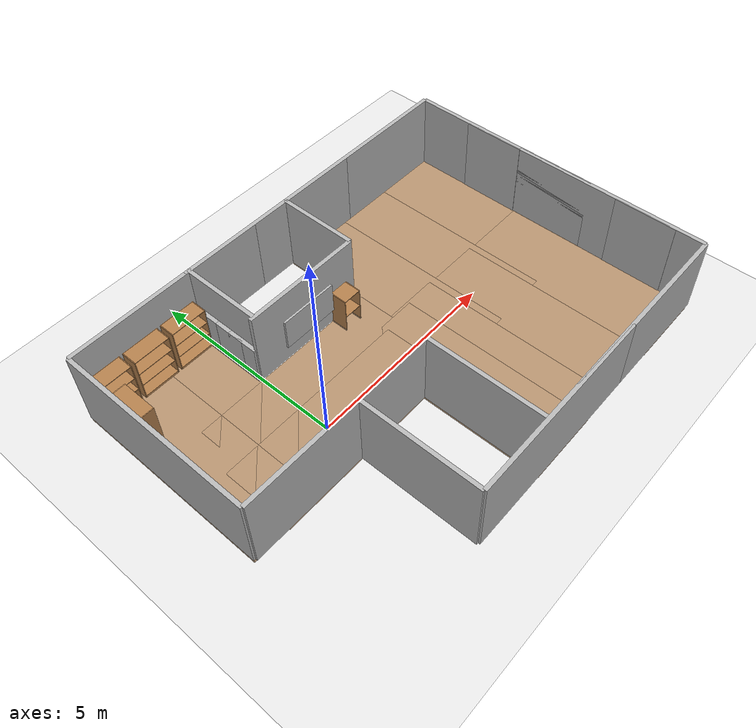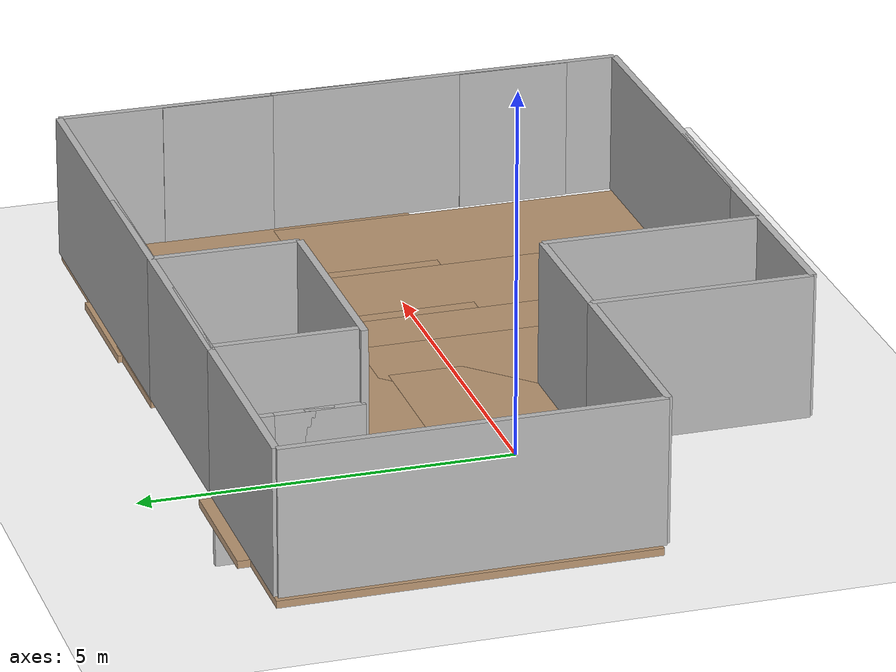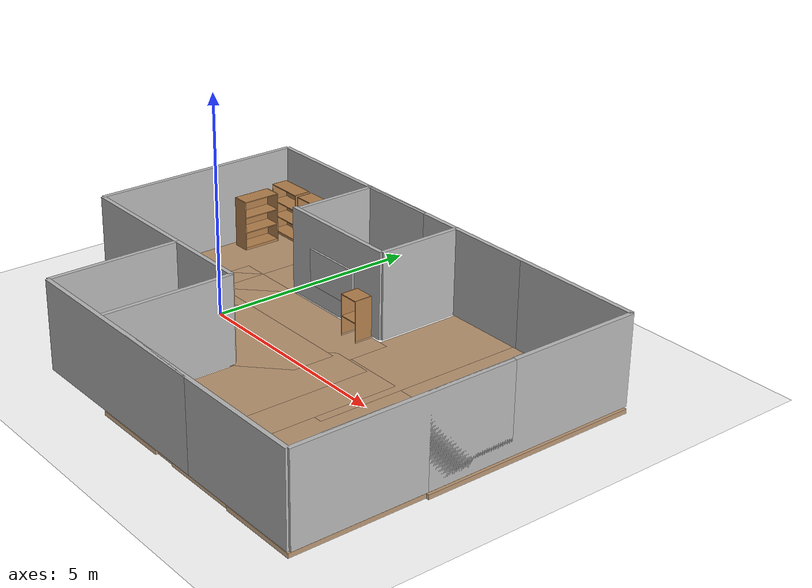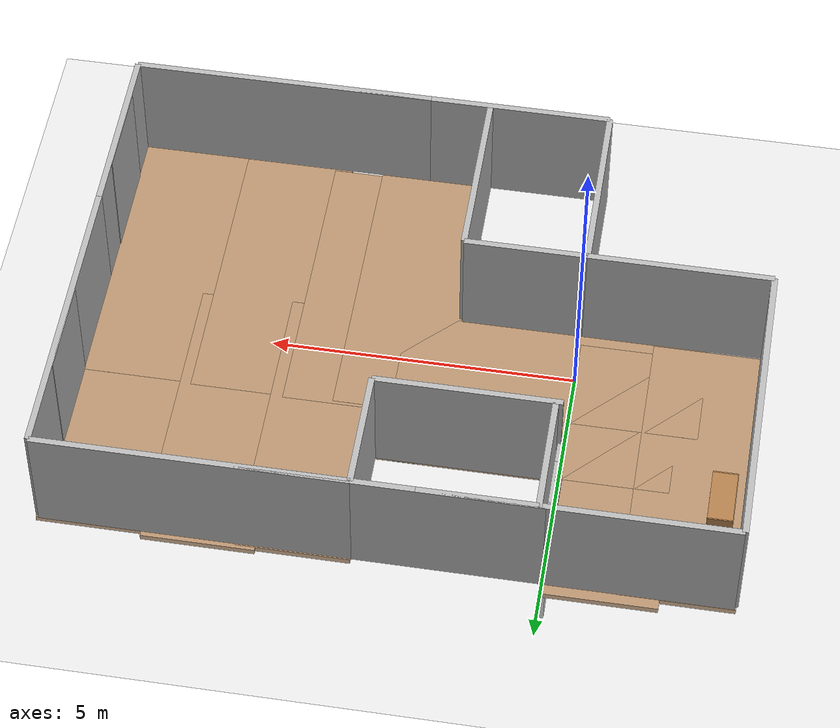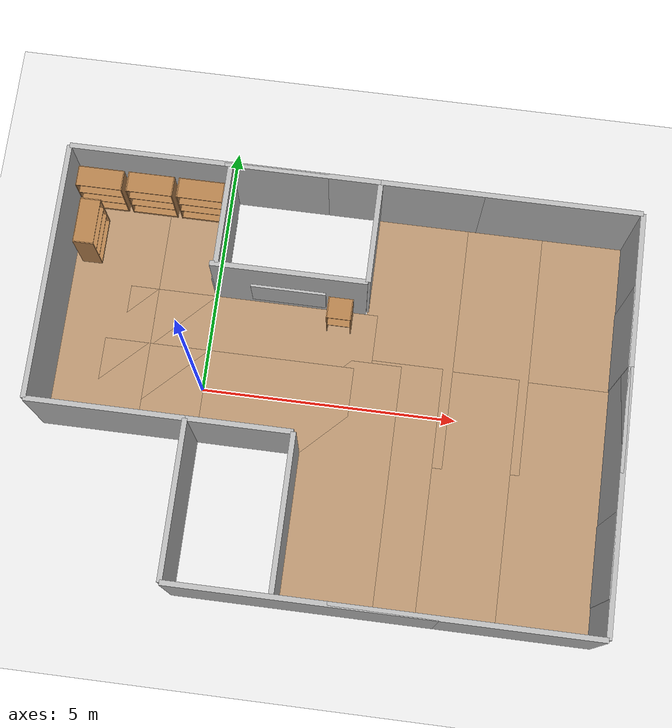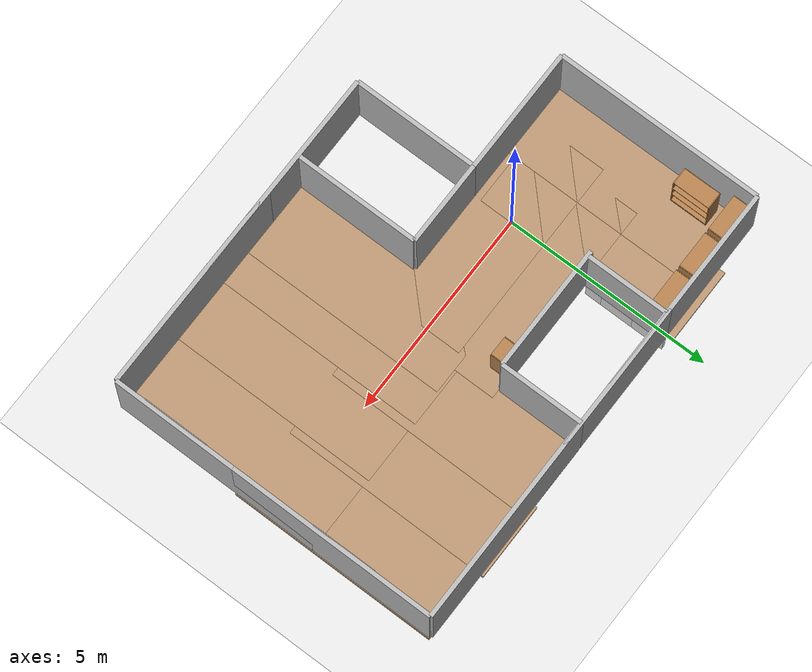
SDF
<sdf version="1.7">
 <world name="default">
  <light name="sun" type="directional">
   <pose>0 0 10 0 -0 0</pose>
   <diffuse>0.8 0.8 0.8 1</diffuse>
   <specular>0.2 0.2 0.2 1</specular>
   <attenuation>
    <range>1000</range>
    <constant>0.9</constant>
    <linear>0.01</linear>
    <quadratic>0.001</quadratic>
   </attenuation>
   <direction>-0.5 0.1 -0.9</direction>
   <spot><inner_angle>0</inner_angle><outer_angle>0</outer_angle><falloff>0</falloff></spot>
  </light>
  <model name="ground_plane">
   <static>1</static>
   <link name="link">
    <collision name="collision">
     <geometry><plane><normal>0 0 1</normal><size>100 100</size></plane></geometry>
     <surface>
      <contact><collide_bitmask>65535</collide_bitmask></contact>
      <friction><ode><mu>100</mu><mu2>50</mu2></ode></friction>
     </surface>
    </collision>
    <visual name="visual">
     <cast_shadows>0</cast_shadows>
     <geometry><plane><normal>0 0 1</normal><size>1 1</size></plane></geometry>
     <material>
      <script><uri>file://media/materials/scripts/gazebo.material</uri><name>Gazebo/Grey</name></script>
     </material>
    </visual>
   </link>
  </model>
  <gravity>0 0 -9.8</gravity>
  <magnetic_field>6e-06 2.3e-05 -4.2e-05</magnetic_field>
  <atmosphere type="adiabatic"/>
  <physics type="ode">
   <max_step_size>0.001</max_step_size>
   <real_time_factor>1</real_time_factor>
   <real_time_update_rate>1000</real_time_update_rate>
  </physics>
  <scene><ambient>0.4 0.4 0.4 1</ambient><background>0.7 0.7 0.7 1</background><shadows>1</shadows></scene>
  <audio><device>default</device></audio>
  <spherical_coordinates>
   <surface_model>EARTH_WGS84</surface_model>
   <latitude_deg>0</latitude_deg>
   <longitude_deg>0</longitude_deg>
   <elevation>0</elevation>
   <heading_deg>0</heading_deg>
  </spherical_coordinates>
  <model name="Bookshelf">
   <static>1</static>
   <link name="link">
    <inertial><mass>1</mass></inertial>
    <collision name="back">
     <pose>0 0.005 0.6 0 -0 0</pose>
     <geometry><box><size>0.9 0.01 1.2</size></box></geometry>
    </collision>
    <visual name="visual1">
     <pose>0 0.005 0.6 0 -0 0</pose>
     <geometry><box><size>0.9 0.01 1.2</size></box></geometry>
     <material>
      <diffuse>1 1 1 1</diffuse>
      <script><uri>file://media/materials/scripts/gazebo.material</uri><name>Gazebo/Wood</name></script>
      <pbr>
       <metal>
        <albedo_map>https://fuel.ignitionrobotics.org/1.0/openrobotics/models/bookshelf/3/files/bookshelf_diffuse.jpg</albedo_map>
       </metal>
      </pbr>
     </material>
    </visual>
    <collision name="left_side">
     <pose>0.45 -0.195 0.6 0 -0 0</pose>
     <geometry><box><size>0.02 0.4 1.2</size></box></geometry>
    </collision>
    <visual name="visual2">
     <pose>0.45 -0.195 0.6 0 -0 0</pose>
     <geometry><box><size>0.02 0.4 1.2</size></box></geometry>
     <material>
      <diffuse>1 1 1 1</diffuse>
      <script><uri>file://media/materials/scripts/gazebo.material</uri><name>Gazebo/Wood</name></script>
      <pbr>
       <metal>
        <albedo_map>https://fuel.ignitionrobotics.org/1.0/openrobotics/models/bookshelf/3/files/bookshelf_diffuse.jpg</albedo_map>
       </metal>
      </pbr>
     </material>
    </visual>
    <collision name="right_side">
     <pose>-0.45 -0.195 0.6 0 -0 0</pose>
     <geometry><box><size>0.02 0.4 1.2</size></box></geometry>
    </collision>
    <visual name="visual3">
     <pose>-0.45 -0.195 0.6 0 -0 0</pose>
     <geometry><box><size>0.02 0.4 1.2</size></box></geometry>
     <material>
      <diffuse>1 1 1 1</diffuse>
      <script><uri>file://media/materials/scripts/gazebo.material</uri><name>Gazebo/Wood</name></script>
      <pbr>
       <metal>
        <albedo_map>https://fuel.ignitionrobotics.org/1.0/openrobotics/models/bookshelf/3/files/bookshelf_diffuse.jpg</albedo_map>
       </metal>
      </pbr>
     </material>
    </visual>
    <collision name="bottom">
     <pose>0 -0.195 0.03 0 -0 0</pose>
     <geometry><box><size>0.88 0.4 0.06</size></box></geometry>
    </collision>
    <visual name="visual4">
     <pose>0 -0.195 0.03 0 -0 0</pose>
     <geometry><box><size>0.88 0.4 0.06</size></box></geometry>
     <material>
      <diffuse>1 1 1 1</diffuse>
      <script><uri>file://media/materials/scripts/gazebo.material</uri><name>Gazebo/Wood</name></script>
      <pbr>
       <metal>
        <albedo_map>https://fuel.ignitionrobotics.org/1.0/openrobotics/models/bookshelf/3/files/bookshelf_diffuse.jpg</albedo_map>
       </metal>
      </pbr>
     </material>
    </visual>
    <collision name="top">
     <pose>0 -0.195 1.19 0 -0 0</pose>
     <geometry><box><size>0.88 0.4 0.02</size></box></geometry>
    </collision>
    <visual name="visual5">
     <pose>0 -0.195 1.19 0 -0 0</pose>
     <geometry><box><size>0.88 0.4 0.02</size></box></geometry>
     <material>
      <diffuse>1 1 1 1</diffuse>
      <script><uri>file://media/materials/scripts/gazebo.material</uri><name>Gazebo/Wood</name></script>
      <pbr>
       <metal>
        <albedo_map>https://fuel.ignitionrobotics.org/1.0/openrobotics/models/bookshelf/3/files/bookshelf_diffuse.jpg</albedo_map>
       </metal>
      </pbr>
     </material>
    </visual>
    <collision name="low_shelf">
     <pose>0 -0.195 0.43 0 -0 0</pose>
     <geometry><box><size>0.88 0.4 0.02</size></box></geometry>
    </collision>
    <visual name="visual6">
     <pose>0 -0.195 0.43 0 -0 0</pose>
     <geometry><box><size>0.88 0.4 0.02</size></box></geometry>
     <material>
      <diffuse>1 1 1 1</diffuse>
      <script><uri>file://media/materials/scripts/gazebo.material</uri><name>Gazebo/Wood</name></script>
      <pbr>
       <metal>
        <albedo_map>https://fuel.ignitionrobotics.org/1.0/openrobotics/models/bookshelf/3/files/bookshelf_diffuse.jpg</albedo_map>
       </metal>
      </pbr>
     </material>
    </visual>
    <collision name="high_shelf">
     <pose>0 -0.195 0.8 0 -0 0</pose>
     <geometry><box><size>0.88 0.4 0.02</size></box></geometry>
    </collision>
    <visual name="visual7">
     <pose>0 -0.195 0.8 0 -0 0</pose>
     <geometry><box><size>0.88 0.4 0.02</size></box></geometry>
     <material>
      <diffuse>1 1 1 1</diffuse>
      <script><uri>file://media/materials/scripts/gazebo.material</uri><name>Gazebo/Wood</name></script>
      <pbr>
       <metal>
        <albedo_map>https://fuel.ignitionrobotics.org/1.0/openrobotics/models/bookshelf/3/files/bookshelf_diffuse.jpg</albedo_map>
       </metal>
      </pbr>
     </material>
    </visual>
   </link>
   <pose>-0.5 3.9 0 0 -0 0</pose>
  </model>
  <model name="cabinet">
   <static>1</static>
   <link name="cabinet_bottom_plate">
    <inertial>
     <pose>0 0 -1 0 -0 0</pose>
     <inertia><ixx>2.05</ixx><ixy>0</ixy><ixz>0</ixz><iyy>2.05</iyy><iyz>0</iyz><izz>2.05</izz></inertia>
     <mass>25</mass>
    </inertial>
    <collision name="cabinet_bottom_plate_geom">
     <pose>0 0 0.01 0 -0 0</pose>
     <geometry><box><size>0.45 0.45 0.02</size></box></geometry>
    </collision>
    <visual name="cabinet_bottom_plate_geom_visual">
     <pose>0 0 0.01 0 -0 0</pose>
     <geometry><box><size>0.45 0.45 0.02</size></box></geometry>
     <material>
      <script><uri>file://media/materials/scripts/gazebo.material</uri><name>Gazebo/Wood</name></script>
     </material>
    </visual>
    <collision name="cabinet_bottom_plate_geom_cabinet_back_plate">
     <pose>0.235 0 0.51 0 -0 0</pose>
     <geometry><box><size>0.02 0.45 1.02</size></box></geometry>
    </collision>
    <visual name="cabinet_bottom_plate_geom_cabinet_back_plate_visual">
     <pose>0.235 0 0.51 0 -0 0</pose>
     <geometry><box><size>0.02 0.45 1.02</size></box></geometry>
     <material>
      <script><uri>file://media/materials/scripts/gazebo.material</uri><name>Gazebo/Wood</name></script>
     </material>
    </visual>
    <collision name="cabinet_bottom_plate_geom_cabinet_left_plate">
     <pose>0 0.235 0.51 0 -0 0</pose>
     <geometry><box><size>0.45 0.02 1.02</size></box></geometry>
    </collision>
    <visual name="cabinet_bottom_plate_geom_cabinet_left_plate_visual">
     <pose>0 0.235 0.51 0 -0 0</pose>
     <geometry><box><size>0.45 0.02 1.02</size></box></geometry>
     <material>
      <script><uri>file://media/materials/scripts/gazebo.material</uri><name>Gazebo/Wood</name></script>
     </material>
    </visual>
    <collision name="cabinet_bottom_plate_geom_cabinet_middle_plate">
     <pose>0 0 0.51 0 -0 0</pose>
     <geometry><box><size>0.45 0.45 0.02</size></box></geometry>
    </collision>
    <visual name="cabinet_bottom_plate_geom_cabinet_middle_plate_visual">
     <pose>0 0 0.51 0 -0 0</pose>
     <geometry><box><size>0.45 0.45 0.02</size></box></geometry>
     <material>
      <script><uri>file://media/materials/scripts/gazebo.material</uri><name>Gazebo/Wood</name></script>
     </material>
    </visual>
    <collision name="cabinet_bottom_plate_geom_cabinet_right_plate">
     <pose>0 -0.235 0.51 0 -0 0</pose>
     <geometry><box><size>0.45 0.02 1.02</size></box></geometry>
    </collision>
    <visual name="cabinet_bottom_plate_geom_cabinet_right_plate_visual">
     <pose>0 -0.235 0.51 0 -0 0</pose>
     <geometry><box><size>0.45 0.02 1.02</size></box></geometry>
     <material>
      <script><uri>file://media/materials/scripts/gazebo.material</uri><name>Gazebo/Wood</name></script>
     </material>
    </visual>
    <collision name="cabinet_bottom_plate_geom_cabinet_top_plate">
     <pose>0 0 1.01 0 -0 0</pose>
     <geometry><box><size>0.45 0.45 0.02</size></box></geometry>
    </collision>
    <visual name="cabinet_bottom_plate_geom_cabinet_top_plate_visual">
     <pose>0 0 1.01 0 -0 0</pose>
     <geometry><box><size>0.45 0.45 0.02</size></box></geometry>
     <material>
      <script><uri>file://media/materials/scripts/gazebo.material</uri><name>Gazebo/Wood</name></script>
     </material>
    </visual>
   </link>
   <pose>2.5 1.75 -0.1 0 -0 1.5707</pose>
  </model>
  <model name="door_08x2m_0">
   <link name="link">
    <visual name="visual">
     <geometry><box><size>0.1 0.8 2</size></box></geometry>
     <material>
      <script>
       <uri>https://fuel.ignitionrobotics.org/1.0/makerspet/models/door_08x2m/1/files/material/script</uri>
       <uri>https://fuel.ignitionrobotics.org/1.0/makerspet/models/door_08x2m/1/files/material/textures</uri>
       <name>Custom/door_08x2m</name>
      </script>
     </material>
    </visual>
   </link>
   <static>1</static>
   <pose>0 2.8 0 0 -0 0</pose>
  </model>
  <model name="living_room"><static>0</static><pose>-1.83596 1.40391 0 0 -0 0</pose></model>
  <model name="room_wall_2x5">
   <link name="link">
    <visual name="visual">
     <geometry><box><size>0.1 5 2</size></box></geometry>
     <material>
      <script>
       <uri>https://fuel.ignitionrobotics.org/1.0/makerspet/models/room_wall_2x5m/1/files/material/script</uri>
       <uri>https://fuel.ignitionrobotics.org/1.0/makerspet/models/room_wall_2x5m/1/files/material/textures</uri>
       <name>Custom/room_wall_2x5</name>
      </script>
     </material>
    </visual>
    <collision name="collision"><geometry><box><size>0.1 5 2</size></box></geometry></collision>
   </link>
   <static>1</static>
   <pose>8 -1.5 1 0 -0 0</pose>
  </model>
  <model name="room_wall_2x5_0">
   <link name="link">
    <visual name="visual">
     <geometry><box><size>0.1 5 2</size></box></geometry>
     <material>
      <script>
       <uri>https://fuel.ignitionrobotics.org/1.0/makerspet/models/room_wall_2x5m/1/files/material/script</uri>
       <uri>https://fuel.ignitionrobotics.org/1.0/makerspet/models/room_wall_2x5m/1/files/material/textures</uri>
       <name>Custom/room_wall_2x5</name>
      </script>
     </material>
    </visual>
    <collision name="collision"><geometry><box><size>0.1 5 2</size></box></geometry></collision>
   </link>
   <static>1</static>
   <pose>8 1.5 1 0 -0 0</pose>
  </model>
  <model name="room_wall_2x5_1">
   <link name="link">
    <visual name="visual">
     <geometry><box><size>0.1 5 2</size></box></geometry>
     <material>
      <script>
       <uri>https://fuel.ignitionrobotics.org/1.0/makerspet/models/room_wall_2x5m/1/files/material/script</uri>
       <uri>https://fuel.ignitionrobotics.org/1.0/makerspet/models/room_wall_2x5m/1/files/material/textures</uri>
       <name>Custom/room_wall_2x5</name>
      </script>
     </material>
    </visual>
    <collision name="collision"><geometry><box><size>0.1 5 2</size></box></geometry></collision>
   </link>
   <static>1</static>
   <pose>5.5 -4 1 0 -0 1.5707</pose>
  </model>
  <model name="room_wall_2x5_2">
   <link name="link">
    <visual name="visual">
     <geometry><box><size>0.1 5 2</size></box></geometry>
     <material>
      <script>
       <uri>https://fuel.ignitionrobotics.org/1.0/makerspet/models/room_wall_2x5m/1/files/material/script</uri>
       <uri>https://fuel.ignitionrobotics.org/1.0/makerspet/models/room_wall_2x5m/1/files/material/textures</uri>
       <name>Custom/room_wall_2x5</name>
      </script>
     </material>
    </visual>
    <collision name="collision"><geometry><box><size>0.1 5 2</size></box></geometry></collision>
   </link>
   <static>1</static>
   <pose>2.5 -4 1 0 -0 1.5707</pose>
  </model>
  <model name="window_curtains">
   <link name="link">
    <visual name="visual">
     <geometry><box><size>0.02 1.5676 2</size></box></geometry>
     <material>
      <script>
       <uri>https://fuel.ignitionrobotics.org/1.0/makerspet/models/window_curtains/1/files/material/script</uri>
       <uri>https://fuel.ignitionrobotics.org/1.0/makerspet/models/window_curtains/1/files/material/textures</uri>
       <name>Custom/window_curtains</name>
      </script>
      <emissive>0 1 0 1</emissive>
     </material>
    </visual>
   </link>
   <static>1</static>
   <pose>7.95 1.76719 1 0 -0 0</pose>
  </model>
  <model name="window_curtains_0">
   <link name="link">
    <visual name="visual">
     <geometry><box><size>0.02 1.5676 2</size></box></geometry>
     <material>
      <script>
       <uri>https://fuel.ignitionrobotics.org/1.0/makerspet/models/window_curtains/1/files/material/script</uri>
       <uri>https://fuel.ignitionrobotics.org/1.0/makerspet/models/window_curtains/1/files/material/textures</uri>
       <name>Custom/window_curtains</name>
      </script>
      <emissive>0 1 0 1</emissive>
     </material>
    </visual>
   </link>
   <static>1</static>
   <pose>7.95 -2.5 1 0 -0 0</pose>
  </model>
  <model name="tv_65in_emissive">
   <link name="link">
    <visual name="visual">
     <geometry><box><size>0.05 1.45 0.83</size></box></geometry>
     <material>
      <script>
       <uri>https://fuel.ignitionrobotics.org/1.0/makerspet/models/tv_65in_emissive/4/files/material/script</uri>
       <uri>https://fuel.ignitionrobotics.org/1.0/makerspet/models/tv_65in_emissive/4/files/material/textures</uri>
       <name>Custom/tv_emissive</name>
      </script>
     </material>
    </visual>
   </link>
   <static>1</static>
   <pose>1.48594 1.87052 0.9 0 -0 1.5707</pose>
  </model>
  <model name="room_wall_2x5_2_clone">
   <link name="link">
    <visual name="visual">
     <geometry><box><size>0.1 5 2</size></box></geometry>
     <material>
      <script>
       <uri>https://fuel.ignitionrobotics.org/1.0/makerspet/models/room_wall_2x5m/1/files/material/script</uri>
       <uri>https://fuel.ignitionrobotics.org/1.0/makerspet/models/room_wall_2x5m/1/files/material/textures</uri>
       <name>Custom/room_wall_2x5</name>
      </script>
     </material>
    </visual>
    <collision name="collision"><geometry><box><size>0.1 5 2</size></box></geometry></collision>
   </link>
   <static>1</static>
   <pose>5.5 4 1 0 -0 1.5707</pose>
  </model>
  <model name="room_wall_2x5_2_clone_clone">
   <link name="link">
    <visual name="visual">
     <geometry><box><size>0.1 5 2</size></box></geometry>
     <material>
      <script>
       <uri>https://fuel.ignitionrobotics.org/1.0/makerspet/models/room_wall_2x5m/1/files/material/script</uri>
       <uri>https://fuel.ignitionrobotics.org/1.0/makerspet/models/room_wall_2x5m/1/files/material/textures</uri>
       <name>Custom/room_wall_2x5</name>
      </script>
     </material>
    </visual>
    <collision name="collision"><geometry><box><size>0.1 5 2</size></box></geometry></collision>
   </link>
   <static>1</static>
   <pose>2.5 4 1 0 -0 1.5707</pose>
  </model>
  <model name="door_08x2m">
   <link name="link">
    <visual name="visual">
     <geometry><box><size>0.1 0.8 2</size></box></geometry>
     <material>
      <script>
       <uri>https://fuel.gazebosim.org/1.0/makerspet/models/door_08x2m/1/files/material/script</uri>
       <uri>https://fuel.gazebosim.org/1.0/makerspet/models/door_08x2m/1/files/material/textures</uri>
       <name>Custom/door_08x2m</name>
      </script>
     </material>
    </visual>
   </link>
   <static>1</static>
   <pose>0 2.4 0 0 -0 0</pose>
  </model>
  <model name="room_wall_2x2">
   <link name="link">
    <visual name="visual">
     <geometry><box><size>0.1 2 2</size></box></geometry>
     <material>
      <script>
       <uri>https://fuel.ignitionrobotics.org/1.0/makerspet/models/room_wall_2x5m/1/files/material/script</uri>
       <uri>https://fuel.ignitionrobotics.org/1.0/makerspet/models/room_wall_2x5m/1/files/material/textures</uri>
       <name>Custom/room_wall_2x5</name>
      </script>
     </material>
    </visual>
    <collision name="collision"><geometry><box><size>0.1 2 2</size></box></geometry></collision>
   </link>
   <static>1</static>
   <pose>3 3 1 0 -0 0</pose>
  </model>
  <model name="room_wall_2x5_2_clone_clone_clone">
   <link name="link">
    <visual name="visual">
     <geometry><box><size>0.1 5 2</size></box></geometry>
     <material>
      <script>
       <uri>https://fuel.ignitionrobotics.org/1.0/makerspet/models/room_wall_2x5m/1/files/material/script</uri>
       <uri>https://fuel.ignitionrobotics.org/1.0/makerspet/models/room_wall_2x5m/1/files/material/textures</uri>
       <name>Custom/room_wall_2x5</name>
      </script>
     </material>
    </visual>
    <collision name="collision"><geometry><box><size>0.1 5 2</size></box></geometry></collision>
   </link>
   <static>1</static>
   <pose>-0.5 4 1 0 -0 1.5707</pose>
  </model>
  <model name="room_wall_2x5_2_clone_clone_clone_0">
   <link name="link">
    <visual name="visual">
     <geometry><box><size>0.1 5 2</size></box></geometry>
     <material>
      <script>
       <uri>https://fuel.ignitionrobotics.org/1.0/makerspet/models/room_wall_2x5m/1/files/material/script</uri>
       <uri>https://fuel.ignitionrobotics.org/1.0/makerspet/models/room_wall_2x5m/1/files/material/textures</uri>
       <name>Custom/room_wall_2x5</name>
      </script>
     </material>
    </visual>
    <collision name="collision"><geometry><box><size>0.1 5 2</size></box></geometry></collision>
   </link>
   <static>1</static>
   <pose>-3 1.5 1 0 -0 0</pose>
  </model>
  <model name="room_wall_2x2_clone">
   <link name="link">
    <visual name="visual">
     <geometry><box><size>0.1 3 2</size></box></geometry>
     <material>
      <script>
       <uri>https://fuel.ignitionrobotics.org/1.0/makerspet/models/room_wall_2x5m/1/files/material/script</uri>
       <uri>https://fuel.ignitionrobotics.org/1.0/makerspet/models/room_wall_2x5m/1/files/material/textures</uri>
       <name>Custom/room_wall_2x5</name>
      </script>
     </material>
    </visual>
    <collision name="collision"><geometry><box><size>0.1 3 2</size></box></geometry></collision>
   </link>
   <static>1</static>
   <pose>0 -2.5 1 0 -0 0</pose>
  </model>
  <model name="room_wall_2x2_clone_clone">
   <link name="link">
    <visual name="visual">
     <geometry><box><size>0.1 3 2</size></box></geometry>
     <material>
      <script>
       <uri>https://fuel.ignitionrobotics.org/1.0/makerspet/models/room_wall_2x5m/1/files/material/script</uri>
       <uri>https://fuel.ignitionrobotics.org/1.0/makerspet/models/room_wall_2x5m/1/files/material/textures</uri>
       <name>Custom/room_wall_2x5</name>
      </script>
     </material>
    </visual>
    <collision name="collision"><geometry><box><size>0.1 3 2</size></box></geometry></collision>
   </link>
   <static>1</static>
   <pose>1.5 2 1 0 -0 1.5707</pose>
  </model>
  <model name="room_wall_2x2_clone_clone_clone">
   <link name="link">
    <visual name="visual">
     <geometry><box><size>0.1 3 2</size></box></geometry>
     <material>
      <script>
       <uri>https://fuel.ignitionrobotics.org/1.0/makerspet/models/room_wall_2x5m/1/files/material/script</uri>
       <uri>https://fuel.ignitionrobotics.org/1.0/makerspet/models/room_wall_2x5m/1/files/material/textures</uri>
       <name>Custom/room_wall_2x5</name>
      </script>
     </material>
    </visual>
    <collision name="collision"><geometry><box><size>0.1 3 2</size></box></geometry></collision>
   </link>
   <static>1</static>
   <pose>-1.5 -1 1 0 -0 1.5707</pose>
  </model>
  <model name="door_08x2m_0_clone">
   <link name="link">
    <visual name="visual">
     <geometry><box><size>0.1 0.8 2</size></box></geometry>
     <material>
      <script>
       <uri>https://fuel.ignitionrobotics.org/1.0/makerspet/models/door_08x2m/1/files/material/script</uri>
       <uri>https://fuel.ignitionrobotics.org/1.0/makerspet/models/door_08x2m/1/files/material/textures</uri>
       <name>Custom/door_08x2m</name>
      </script>
     </material>
    </visual>
   </link>
   <static>1</static>
   <pose>0 3.6 0 0 -0 0</pose>
  </model>
  <model name="Bookshelf_clone">
   <static>1</static>
   <link name="link">
    <inertial><mass>1</mass></inertial>
    <collision name="back">
     <pose>0 0.005 0.6 0 -0 0</pose>
     <geometry><box><size>0.9 0.01 1.2</size></box></geometry>
    </collision>
    <visual name="visual1">
     <pose>0 0.005 0.6 0 -0 0</pose>
     <geometry><box><size>0.9 0.01 1.2</size></box></geometry>
     <material>
      <diffuse>1 1 1 1</diffuse>
      <script><uri>file://media/materials/scripts/gazebo.material</uri><name>Gazebo/Wood</name></script>
      <pbr>
       <metal>
        <albedo_map>https://fuel.ignitionrobotics.org/1.0/openrobotics/models/bookshelf/3/files/bookshelf_diffuse.jpg</albedo_map>
       </metal>
      </pbr>
     </material>
    </visual>
    <collision name="left_side">
     <pose>0.45 -0.195 0.6 0 -0 0</pose>
     <geometry><box><size>0.02 0.4 1.2</size></box></geometry>
    </collision>
    <visual name="visual2">
     <pose>0.45 -0.195 0.6 0 -0 0</pose>
     <geometry><box><size>0.02 0.4 1.2</size></box></geometry>
     <material>
      <diffuse>1 1 1 1</diffuse>
      <script><uri>file://media/materials/scripts/gazebo.material</uri><name>Gazebo/Wood</name></script>
      <pbr>
       <metal>
        <albedo_map>https://fuel.ignitionrobotics.org/1.0/openrobotics/models/bookshelf/3/files/bookshelf_diffuse.jpg</albedo_map>
       </metal>
      </pbr>
     </material>
    </visual>
    <collision name="right_side">
     <pose>-0.45 -0.195 0.6 0 -0 0</pose>
     <geometry><box><size>0.02 0.4 1.2</size></box></geometry>
    </collision>
    <visual name="visual3">
     <pose>-0.45 -0.195 0.6 0 -0 0</pose>
     <geometry><box><size>0.02 0.4 1.2</size></box></geometry>
     <material>
      <diffuse>1 1 1 1</diffuse>
      <script><uri>file://media/materials/scripts/gazebo.material</uri><name>Gazebo/Wood</name></script>
      <pbr>
       <metal>
        <albedo_map>https://fuel.ignitionrobotics.org/1.0/openrobotics/models/bookshelf/3/files/bookshelf_diffuse.jpg</albedo_map>
       </metal>
      </pbr>
     </material>
    </visual>
    <collision name="bottom">
     <pose>0 -0.195 0.03 0 -0 0</pose>
     <geometry><box><size>0.88 0.4 0.06</size></box></geometry>
    </collision>
    <visual name="visual4">
     <pose>0 -0.195 0.03 0 -0 0</pose>
     <geometry><box><size>0.88 0.4 0.06</size></box></geometry>
     <material>
      <diffuse>1 1 1 1</diffuse>
      <script><uri>file://media/materials/scripts/gazebo.material</uri><name>Gazebo/Wood</name></script>
      <pbr>
       <metal>
        <albedo_map>https://fuel.ignitionrobotics.org/1.0/openrobotics/models/bookshelf/3/files/bookshelf_diffuse.jpg</albedo_map>
       </metal>
      </pbr>
     </material>
    </visual>
    <collision name="top">
     <pose>0 -0.195 1.19 0 -0 0</pose>
     <geometry><box><size>0.88 0.4 0.02</size></box></geometry>
    </collision>
    <visual name="visual5">
     <pose>0 -0.195 1.19 0 -0 0</pose>
     <geometry><box><size>0.88 0.4 0.02</size></box></geometry>
     <material>
      <diffuse>1 1 1 1</diffuse>
      <script><uri>file://media/materials/scripts/gazebo.material</uri><name>Gazebo/Wood</name></script>
      <pbr>
       <metal>
        <albedo_map>https://fuel.ignitionrobotics.org/1.0/openrobotics/models/bookshelf/3/files/bookshelf_diffuse.jpg</albedo_map>
       </metal>
      </pbr>
     </material>
    </visual>
    <collision name="low_shelf">
     <pose>0 -0.195 0.43 0 -0 0</pose>
     <geometry><box><size>0.88 0.4 0.02</size></box></geometry>
    </collision>
    <visual name="visual6">
     <pose>0 -0.195 0.43 0 -0 0</pose>
     <geometry><box><size>0.88 0.4 0.02</size></box></geometry>
     <material>
      <diffuse>1 1 1 1</diffuse>
      <script><uri>file://media/materials/scripts/gazebo.material</uri><name>Gazebo/Wood</name></script>
      <pbr>
       <metal>
        <albedo_map>https://fuel.ignitionrobotics.org/1.0/openrobotics/models/bookshelf/3/files/bookshelf_diffuse.jpg</albedo_map>
       </metal>
      </pbr>
     </material>
    </visual>
    <collision name="high_shelf">
     <pose>0 -0.195 0.8 0 -0 0</pose>
     <geometry><box><size>0.88 0.4 0.02</size></box></geometry>
    </collision>
    <visual name="visual7">
     <pose>0 -0.195 0.8 0 -0 0</pose>
     <geometry><box><size>0.88 0.4 0.02</size></box></geometry>
     <material>
      <diffuse>1 1 1 1</diffuse>
      <script><uri>file://media/materials/scripts/gazebo.material</uri><name>Gazebo/Wood</name></script>
      <pbr>
       <metal>
        <albedo_map>https://fuel.ignitionrobotics.org/1.0/openrobotics/models/bookshelf/3/files/bookshelf_diffuse.jpg</albedo_map>
       </metal>
      </pbr>
     </material>
    </visual>
   </link>
   <pose>-1.5 3.9 0 0 -0 0</pose>
  </model>
  <model name="Bookshelf_clone_0">
   <static>1</static>
   <link name="link">
    <inertial><mass>1</mass></inertial>
    <collision name="back">
     <pose>0 0.005 0.6 0 -0 0</pose>
     <geometry><box><size>0.9 0.01 1.2</size></box></geometry>
    </collision>
    <visual name="visual1">
     <pose>0 0.005 0.6 0 -0 0</pose>
     <geometry><box><size>0.9 0.01 1.2</size></box></geometry>
     <material>
      <diffuse>1 1 1 1</diffuse>
      <script><uri>file://media/materials/scripts/gazebo.material</uri><name>Gazebo/Wood</name></script>
      <pbr>
       <metal>
        <albedo_map>https://fuel.ignitionrobotics.org/1.0/openrobotics/models/bookshelf/3/files/bookshelf_diffuse.jpg</albedo_map>
       </metal>
      </pbr>
     </material>
    </visual>
    <collision name="left_side">
     <pose>0.45 -0.195 0.6 0 -0 0</pose>
     <geometry><box><size>0.02 0.4 1.2</size></box></geometry>
    </collision>
    <visual name="visual2">
     <pose>0.45 -0.195 0.6 0 -0 0</pose>
     <geometry><box><size>0.02 0.4 1.2</size></box></geometry>
     <material>
      <diffuse>1 1 1 1</diffuse>
      <script><uri>file://media/materials/scripts/gazebo.material</uri><name>Gazebo/Wood</name></script>
      <pbr>
       <metal>
        <albedo_map>https://fuel.ignitionrobotics.org/1.0/openrobotics/models/bookshelf/3/files/bookshelf_diffuse.jpg</albedo_map>
       </metal>
      </pbr>
     </material>
    </visual>
    <collision name="right_side">
     <pose>-0.45 -0.195 0.6 0 -0 0</pose>
     <geometry><box><size>0.02 0.4 1.2</size></box></geometry>
    </collision>
    <visual name="visual3">
     <pose>-0.45 -0.195 0.6 0 -0 0</pose>
     <geometry><box><size>0.02 0.4 1.2</size></box></geometry>
     <material>
      <diffuse>1 1 1 1</diffuse>
      <script><uri>file://media/materials/scripts/gazebo.material</uri><name>Gazebo/Wood</name></script>
      <pbr>
       <metal>
        <albedo_map>https://fuel.ignitionrobotics.org/1.0/openrobotics/models/bookshelf/3/files/bookshelf_diffuse.jpg</albedo_map>
       </metal>
      </pbr>
     </material>
    </visual>
    <collision name="bottom">
     <pose>0 -0.195 0.03 0 -0 0</pose>
     <geometry><box><size>0.88 0.4 0.06</size></box></geometry>
    </collision>
    <visual name="visual4">
     <pose>0 -0.195 0.03 0 -0 0</pose>
     <geometry><box><size>0.88 0.4 0.06</size></box></geometry>
     <material>
      <diffuse>1 1 1 1</diffuse>
      <script><uri>file://media/materials/scripts/gazebo.material</uri><name>Gazebo/Wood</name></script>
      <pbr>
       <metal>
        <albedo_map>https://fuel.ignitionrobotics.org/1.0/openrobotics/models/bookshelf/3/files/bookshelf_diffuse.jpg</albedo_map>
       </metal>
      </pbr>
     </material>
    </visual>
    <collision name="top">
     <pose>0 -0.195 1.19 0 -0 0</pose>
     <geometry><box><size>0.88 0.4 0.02</size></box></geometry>
    </collision>
    <visual name="visual5">
     <pose>0 -0.195 1.19 0 -0 0</pose>
     <geometry><box><size>0.88 0.4 0.02</size></box></geometry>
     <material>
      <diffuse>1 1 1 1</diffuse>
      <script><uri>file://media/materials/scripts/gazebo.material</uri><name>Gazebo/Wood</name></script>
      <pbr>
       <metal>
        <albedo_map>https://fuel.ignitionrobotics.org/1.0/openrobotics/models/bookshelf/3/files/bookshelf_diffuse.jpg</albedo_map>
       </metal>
      </pbr>
     </material>
    </visual>
    <collision name="low_shelf">
     <pose>0 -0.195 0.43 0 -0 0</pose>
     <geometry><box><size>0.88 0.4 0.02</size></box></geometry>
    </collision>
    <visual name="visual6">
     <pose>0 -0.195 0.43 0 -0 0</pose>
     <geometry><box><size>0.88 0.4 0.02</size></box></geometry>
     <material>
      <diffuse>1 1 1 1</diffuse>
      <script><uri>file://media/materials/scripts/gazebo.material</uri><name>Gazebo/Wood</name></script>
      <pbr>
       <metal>
        <albedo_map>https://fuel.ignitionrobotics.org/1.0/openrobotics/models/bookshelf/3/files/bookshelf_diffuse.jpg</albedo_map>
       </metal>
      </pbr>
     </material>
    </visual>
    <collision name="high_shelf">
     <pose>0 -0.195 0.8 0 -0 0</pose>
     <geometry><box><size>0.88 0.4 0.02</size></box></geometry>
    </collision>
    <visual name="visual7">
     <pose>0 -0.195 0.8 0 -0 0</pose>
     <geometry><box><size>0.88 0.4 0.02</size></box></geometry>
     <material>
      <diffuse>1 1 1 1</diffuse>
      <script><uri>file://media/materials/scripts/gazebo.material</uri><name>Gazebo/Wood</name></script>
      <pbr>
       <metal>
        <albedo_map>https://fuel.ignitionrobotics.org/1.0/openrobotics/models/bookshelf/3/files/bookshelf_diffuse.jpg</albedo_map>
       </metal>
      </pbr>
     </material>
    </visual>
   </link>
   <pose>-2.5 3.9 0 0 -0 0</pose>
  </model>
  <model name="Bookshelf_clone_1">
   <static>1</static>
   <link name="link">
    <inertial><mass>1</mass></inertial>
    <collision name="back">
     <pose>0 0.005 0.6 0 -0 0</pose>
     <geometry><box><size>0.9 0.01 1.2</size></box></geometry>
    </collision>
    <visual name="visual1">
     <pose>0 0.005 0.6 0 -0 0</pose>
     <geometry><box><size>0.9 0.01 1.2</size></box></geometry>
     <material>
      <diffuse>1 1 1 1</diffuse>
      <script><uri>file://media/materials/scripts/gazebo.material</uri><name>Gazebo/Wood</name></script>
      <pbr>
       <metal>
        <albedo_map>https://fuel.ignitionrobotics.org/1.0/openrobotics/models/bookshelf/3/files/bookshelf_diffuse.jpg</albedo_map>
       </metal>
      </pbr>
     </material>
    </visual>
    <collision name="left_side">
     <pose>0.45 -0.195 0.6 0 -0 0</pose>
     <geometry><box><size>0.02 0.4 1.2</size></box></geometry>
    </collision>
    <visual name="visual2">
     <pose>0.45 -0.195 0.6 0 -0 0</pose>
     <geometry><box><size>0.02 0.4 1.2</size></box></geometry>
     <material>
      <diffuse>1 1 1 1</diffuse>
      <script><uri>file://media/materials/scripts/gazebo.material</uri><name>Gazebo/Wood</name></script>
      <pbr>
       <metal>
        <albedo_map>https://fuel.ignitionrobotics.org/1.0/openrobotics/models/bookshelf/3/files/bookshelf_diffuse.jpg</albedo_map>
       </metal>
      </pbr>
     </material>
    </visual>
    <collision name="right_side">
     <pose>-0.45 -0.195 0.6 0 -0 0</pose>
     <geometry><box><size>0.02 0.4 1.2</size></box></geometry>
    </collision>
    <visual name="visual3">
     <pose>-0.45 -0.195 0.6 0 -0 0</pose>
     <geometry><box><size>0.02 0.4 1.2</size></box></geometry>
     <material>
      <diffuse>1 1 1 1</diffuse>
      <script><uri>file://media/materials/scripts/gazebo.material</uri><name>Gazebo/Wood</name></script>
      <pbr>
       <metal>
        <albedo_map>https://fuel.ignitionrobotics.org/1.0/openrobotics/models/bookshelf/3/files/bookshelf_diffuse.jpg</albedo_map>
       </metal>
      </pbr>
     </material>
    </visual>
    <collision name="bottom">
     <pose>0 -0.195 0.03 0 -0 0</pose>
     <geometry><box><size>0.88 0.4 0.06</size></box></geometry>
    </collision>
    <visual name="visual4">
     <pose>0 -0.195 0.03 0 -0 0</pose>
     <geometry><box><size>0.88 0.4 0.06</size></box></geometry>
     <material>
      <diffuse>1 1 1 1</diffuse>
      <script><uri>file://media/materials/scripts/gazebo.material</uri><name>Gazebo/Wood</name></script>
      <pbr>
       <metal>
        <albedo_map>https://fuel.ignitionrobotics.org/1.0/openrobotics/models/bookshelf/3/files/bookshelf_diffuse.jpg</albedo_map>
       </metal>
      </pbr>
     </material>
    </visual>
    <collision name="top">
     <pose>0 -0.195 1.19 0 -0 0</pose>
     <geometry><box><size>0.88 0.4 0.02</size></box></geometry>
    </collision>
    <visual name="visual5">
     <pose>0 -0.195 1.19 0 -0 0</pose>
     <geometry><box><size>0.88 0.4 0.02</size></box></geometry>
     <material>
      <diffuse>1 1 1 1</diffuse>
      <script><uri>file://media/materials/scripts/gazebo.material</uri><name>Gazebo/Wood</name></script>
      <pbr>
       <metal>
        <albedo_map>https://fuel.ignitionrobotics.org/1.0/openrobotics/models/bookshelf/3/files/bookshelf_diffuse.jpg</albedo_map>
       </metal>
      </pbr>
     </material>
    </visual>
    <collision name="low_shelf">
     <pose>0 -0.195 0.43 0 -0 0</pose>
     <geometry><box><size>0.88 0.4 0.02</size></box></geometry>
    </collision>
    <visual name="visual6">
     <pose>0 -0.195 0.43 0 -0 0</pose>
     <geometry><box><size>0.88 0.4 0.02</size></box></geometry>
     <material>
      <diffuse>1 1 1 1</diffuse>
      <script><uri>file://media/materials/scripts/gazebo.material</uri><name>Gazebo/Wood</name></script>
      <pbr>
       <metal>
        <albedo_map>https://fuel.ignitionrobotics.org/1.0/openrobotics/models/bookshelf/3/files/bookshelf_diffuse.jpg</albedo_map>
       </metal>
      </pbr>
     </material>
    </visual>
    <collision name="high_shelf">
     <pose>0 -0.195 0.8 0 -0 0</pose>
     <geometry><box><size>0.88 0.4 0.02</size></box></geometry>
    </collision>
    <visual name="visual7">
     <pose>0 -0.195 0.8 0 -0 0</pose>
     <geometry><box><size>0.88 0.4 0.02</size></box></geometry>
     <material>
      <diffuse>1 1 1 1</diffuse>
      <script><uri>file://media/materials/scripts/gazebo.material</uri><name>Gazebo/Wood</name></script>
      <pbr>
       <metal>
        <albedo_map>https://fuel.ignitionrobotics.org/1.0/openrobotics/models/bookshelf/3/files/bookshelf_diffuse.jpg</albedo_map>
       </metal>
      </pbr>
     </material>
    </visual>
   </link>
   <pose>-2.8 2.8 0 0 -0 1.5707</pose>
  </model>
  <model name="room_wall_2x2_clone_clone_clone_0">
   <link name="link">
    <visual name="visual">
     <geometry><box><size>0.1 3 2</size></box></geometry>
     <material>
      <script>
       <uri>https://fuel.ignitionrobotics.org/1.0/makerspet/models/room_wall_2x5m/1/files/material/script</uri>
       <uri>https://fuel.ignitionrobotics.org/1.0/makerspet/models/room_wall_2x5m/1/files/material/textures</uri>
       <name>Custom/room_wall_2x5</name>
      </script>
     </material>
    </visual>
    <collision name="collision"><geometry><box><size>0.1 3 2</size></box></geometry></collision>
   </link>
   <static>1</static>
   <pose>2 -2.5 1 0 -0 0</pose>
  </model>
  <model name="room_wall_2x2_clone_0">
   <link name="link">
    <visual name="visual">
     <geometry><box><size>0.1 2 2</size></box></geometry>
     <material>
      <script>
       <uri>https://fuel.ignitionrobotics.org/1.0/makerspet/models/room_wall_2x5m/1/files/material/script</uri>
       <uri>https://fuel.ignitionrobotics.org/1.0/makerspet/models/room_wall_2x5m/1/files/material/textures</uri>
       <name>Custom/room_wall_2x5</name>
      </script>
     </material>
    </visual>
    <collision name="collision"><geometry><box><size>0.1 2 2</size></box></geometry></collision>
   </link>
   <static>1</static>
   <pose>1 -1 1 0 -0 1.5707</pose>
  </model>
  <model name="fence">
   <static>1</static>
   <link name="link">
    <pose>0 0 0.915 0 -0 0</pose>
    <collision name="collision"><geometry><box><size>0.1 5 1.83</size></box></geometry></collision>
    <visual name="visual">
     <cast_shadows>0</cast_shadows>
     <geometry><box><size>0.1 5 1.83</size></box></geometry>
     <material>
      <script>
       <uri>https://fuel.ignitionrobotics.org/1.0/athackst/models/fence/2/files/materials/scripts</uri>
       <uri>https://fuel.ignitionrobotics.org/1.0/athackst/models/fence/2/files/materials/textures</uri>
       <name>Fence/WoodBoarding</name>
      </script>
     </material>
    </visual>
   </link>
   <pose>6.23053 1.5 -0.1 0 1.5707 0</pose>
  </model>
  <model name="fence_clone">
   <static>1</static>
   <link name="link">
    <pose>0 0 0.915 0 -0 0</pose>
    <collision name="collision"><geometry><box><size>0.1 5 1.83</size></box></geometry></collision>
    <visual name="visual">
     <cast_shadows>0</cast_shadows>
     <geometry><box><size>0.1 5 1.83</size></box></geometry>
     <material>
      <script>
       <uri>https://fuel.ignitionrobotics.org/1.0/athackst/models/fence/2/files/materials/scripts</uri>
       <uri>https://fuel.ignitionrobotics.org/1.0/athackst/models/fence/2/files/materials/textures</uri>
       <name>Fence/WoodBoarding</name>
      </script>
     </material>
    </visual>
   </link>
   <pose>6.16316 -1.51951 -0.1 0 1.5707 0</pose>
  </model>
  <model name="fence_clone_0">
   <static>1</static>
   <link name="link">
    <pose>0 0 0.915 0 -0 0</pose>
    <collision name="collision"><geometry><box><size>0.1 5 1.83</size></box></geometry></collision>
    <visual name="visual">
     <cast_shadows>0</cast_shadows>
     <geometry><box><size>0.1 5 1.83</size></box></geometry>
     <material>
      <script>
       <uri>https://fuel.ignitionrobotics.org/1.0/athackst/models/fence/2/files/materials/scripts</uri>
       <uri>https://fuel.ignitionrobotics.org/1.0/athackst/models/fence/2/files/materials/textures</uri>
       <name>Fence/WoodBoarding</name>
      </script>
     </material>
    </visual>
   </link>
   <pose>4.35297 -1.49126 -0.1 0 1.5707 0</pose>
  </model>
  <model name="fence_clone_1">
   <static>1</static>
   <link name="link">
    <pose>0 0 0.915 0 -0 0</pose>
    <collision name="collision"><geometry><box><size>0.1 5 1.83</size></box></geometry></collision>
    <visual name="visual">
     <cast_shadows>0</cast_shadows>
     <geometry><box><size>0.1 5 1.83</size></box></geometry>
     <material>
      <script>
       <uri>https://fuel.ignitionrobotics.org/1.0/athackst/models/fence/2/files/materials/scripts</uri>
       <uri>https://fuel.ignitionrobotics.org/1.0/athackst/models/fence/2/files/materials/textures</uri>
       <name>Fence/WoodBoarding</name>
      </script>
     </material>
    </visual>
   </link>
   <pose>4.53226 1.59443 -0.1 0 1.5707 0</pose>
  </model>
  <model name="fence_clone_2">
   <static>1</static>
   <link name="link">
    <pose>0 0 0.915 0 -0 0</pose>
    <collision name="collision"><geometry><box><size>0.1 5 1.83</size></box></geometry></collision>
    <visual name="visual">
     <cast_shadows>0</cast_shadows>
     <geometry><box><size>0.1 5 1.83</size></box></geometry>
     <material>
      <script>
       <uri>https://fuel.ignitionrobotics.org/1.0/athackst/models/fence/2/files/materials/scripts</uri>
       <uri>https://fuel.ignitionrobotics.org/1.0/athackst/models/fence/2/files/materials/textures</uri>
       <name>Fence/WoodBoarding</name>
      </script>
     </material>
    </visual>
   </link>
   <pose>3.02361 1.53528 -0.1 0 1.5707 0</pose>
  </model>
  <model name="fence_clone_3">
   <static>1</static>
   <link name="link">
    <pose>0 0 0.915 0 -0 0</pose>
    <collision name="collision"><geometry><box><size>0.1 5 1.83</size></box></geometry></collision>
    <visual name="visual">
     <cast_shadows>0</cast_shadows>
     <geometry><box><size>0.1 5 1.83</size></box></geometry>
     <material>
      <script>
       <uri>https://fuel.ignitionrobotics.org/1.0/athackst/models/fence/2/files/materials/scripts</uri>
       <uri>https://fuel.ignitionrobotics.org/1.0/athackst/models/fence/2/files/materials/textures</uri>
       <name>Fence/WoodBoarding</name>
      </script>
     </material>
    </visual>
   </link>
   <pose>2.82544 -1.46294 -0.1 0 1.5707 0</pose>
  </model>
  <model name="fence_clone_4">
   <static>1</static>
   <link name="link">
    <pose>0 0 0.915 0 -0 0</pose>
    <collision name="collision"><geometry><box><size>0.1 5 1.83</size></box></geometry></collision>
    <visual name="visual">
     <cast_shadows>0</cast_shadows>
     <geometry><box><size>0.1 5 1.83</size></box></geometry>
     <material>
      <script>
       <uri>https://fuel.ignitionrobotics.org/1.0/athackst/models/fence/2/files/materials/scripts</uri>
       <uri>https://fuel.ignitionrobotics.org/1.0/athackst/models/fence/2/files/materials/textures</uri>
       <name>Fence/WoodBoarding</name>
      </script>
     </material>
    </visual>
   </link>
   <pose>2.0053 -1.51951 -0.1 0 1.5707 0</pose>
  </model>
  <model name="fence_clone_5">
   <static>1</static>
   <link name="link">
    <pose>0 0 0.915 0 -0 0</pose>
    <collision name="collision"><geometry><box><size>0.1 5 1.83</size></box></geometry></collision>
    <visual name="visual">
     <cast_shadows>0</cast_shadows>
     <geometry><box><size>0.1 5 1.83</size></box></geometry>
     <material>
      <script>
       <uri>https://fuel.ignitionrobotics.org/1.0/athackst/models/fence/2/files/materials/scripts</uri>
       <uri>https://fuel.ignitionrobotics.org/1.0/athackst/models/fence/2/files/materials/textures</uri>
       <name>Fence/WoodBoarding</name>
      </script>
     </material>
    </visual>
   </link>
   <pose>-3.02398 1.52022 -0.1 0 1.5707 0</pose>
  </model>
  <model name="fence_clone_6">
   <static>1</static>
   <link name="link">
    <pose>0 0 0.915 0 -0 0</pose>
    <collision name="collision"><geometry><box><size>0.1 5 1.83</size></box></geometry></collision>
    <visual name="visual">
     <cast_shadows>0</cast_shadows>
     <geometry><box><size>0.1 5 1.83</size></box></geometry>
     <material>
      <script>
       <uri>https://fuel.ignitionrobotics.org/1.0/athackst/models/fence/2/files/materials/scripts</uri>
       <uri>https://fuel.ignitionrobotics.org/1.0/athackst/models/fence/2/files/materials/textures</uri>
       <name>Fence/WoodBoarding</name>
      </script>
     </material>
    </visual>
   </link>
   <pose>-1.83605 1.68994 -0.1 0 1.5707 0</pose>
  </model>
  <model name="fence_clone_7">
   <static>1</static>
   <link name="link">
    <pose>0 0 0.915 0 -0 0</pose>
    <collision name="collision"><geometry><box><size>0.1 5 1.83</size></box></geometry></collision>
    <visual name="visual">
     <cast_shadows>0</cast_shadows>
     <geometry><box><size>0.1 5 1.83</size></box></geometry>
     <material>
      <script>
       <uri>https://fuel.ignitionrobotics.org/1.0/athackst/models/fence/2/files/materials/scripts</uri>
       <uri>https://fuel.ignitionrobotics.org/1.0/athackst/models/fence/2/files/materials/textures</uri>
       <name>Fence/WoodBoarding</name>
      </script>
     </material>
    </visual>
   </link>
   <pose>0.73889 0.13453 -0.1 4.8e-05 1.5707 1.57075</pose>
  </model>
  <model name="fence_clone_7_clone">
   <static>1</static>
   <link name="link">
    <pose>0 0 0.915 0 -0 0</pose>
    <collision name="collision"><geometry><box><size>0.1 5 1.83</size></box></geometry></collision>
    <visual name="visual">
     <cast_shadows>0</cast_shadows>
     <geometry><box><size>0.1 5 1.83</size></box></geometry>
     <material>
      <script>
       <uri>https://fuel.ignitionrobotics.org/1.0/athackst/models/fence/2/files/materials/scripts</uri>
       <uri>https://fuel.ignitionrobotics.org/1.0/athackst/models/fence/2/files/materials/textures</uri>
       <name>Fence/WoodBoarding</name>
      </script>
     </material>
    </visual>
   </link>
   <pose>0.398438 -1 -0.1 -0.020783 1.5707 1.54992</pose>
  </model>
  <model name="room_wall_2x2_clone_1">
   <link name="link">
    <visual name="visual">
     <geometry><box><size>0.1 2 2</size></box></geometry>
     <material>
      <script>
       <uri>https://fuel.ignitionrobotics.org/1.0/makerspet/models/room_wall_2x5m/1/files/material/script</uri>
       <uri>https://fuel.ignitionrobotics.org/1.0/makerspet/models/room_wall_2x5m/1/files/material/textures</uri>
       <name>Custom/room_wall_2x5</name>
      </script>
     </material>
    </visual>
    <collision name="collision"><geometry><box><size>0.1 2 2</size></box></geometry></collision>
   </link>
   <static>1</static>
   <pose>0.113955 3.02686 1 0 -0 0</pose>
  </model>
 </world>
</sdf>
